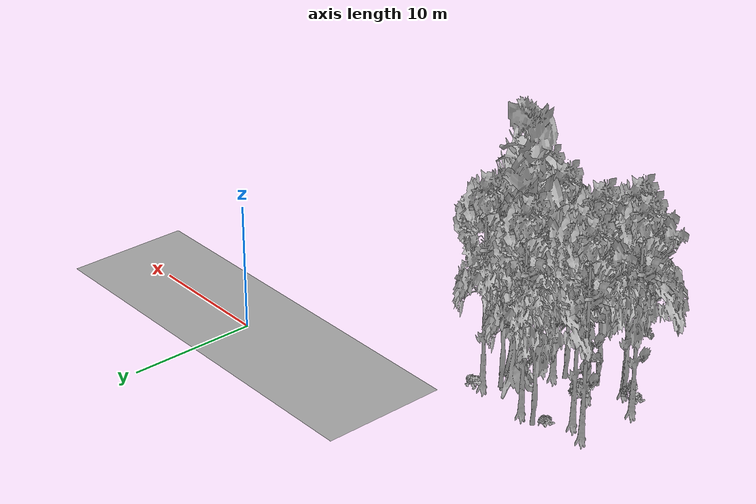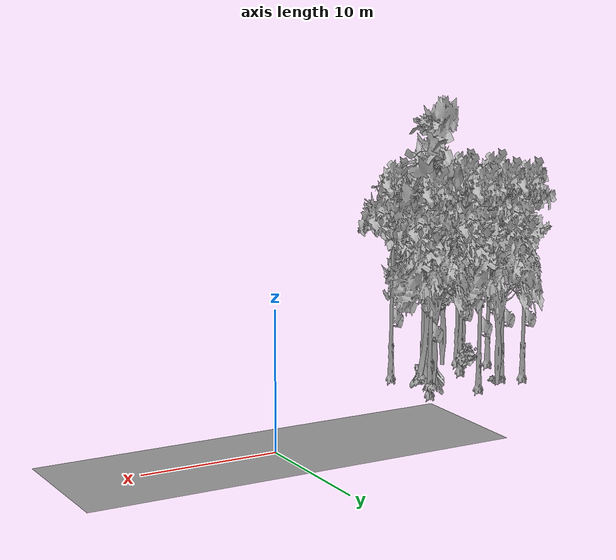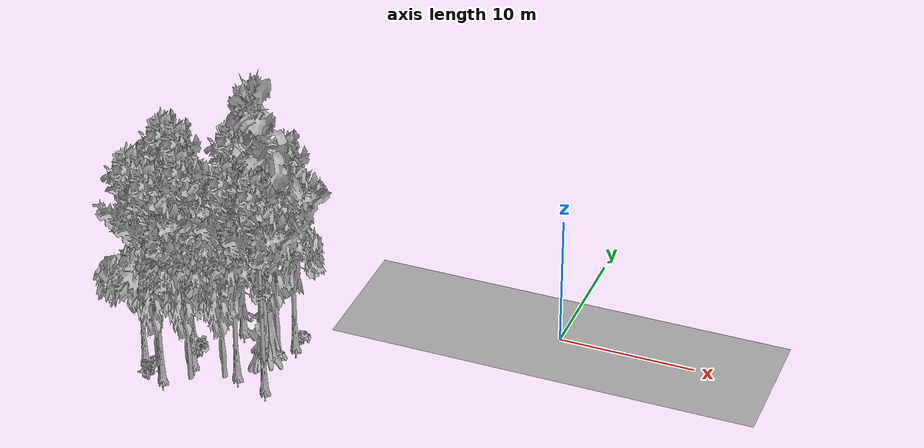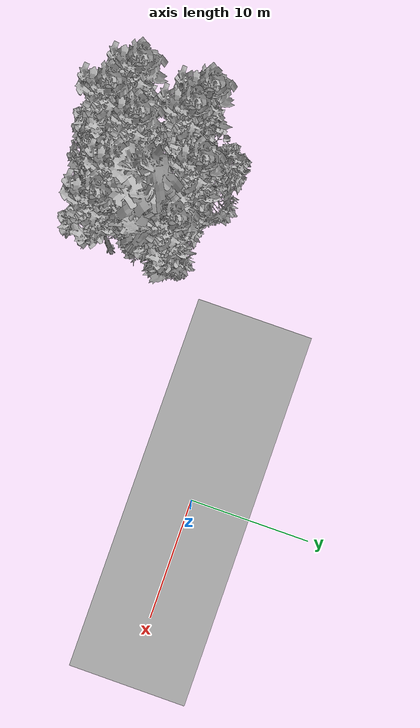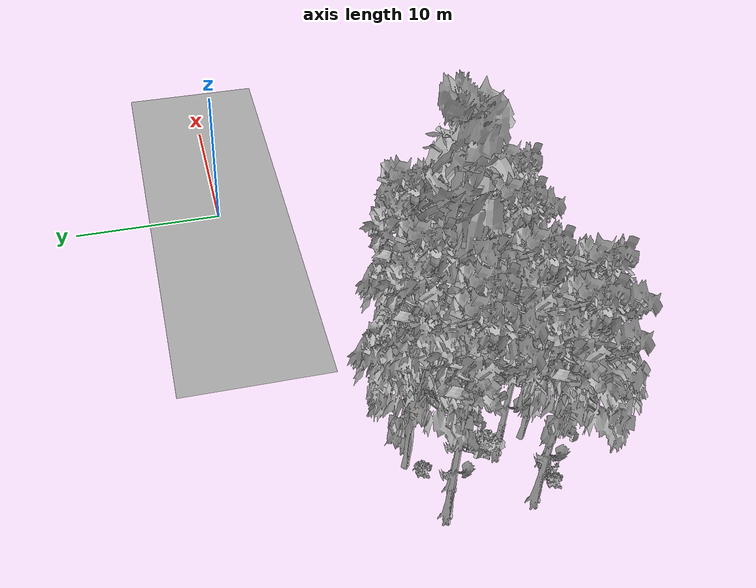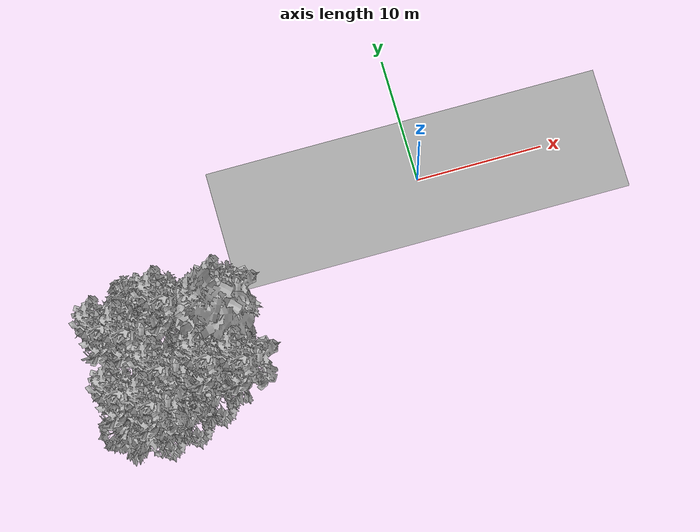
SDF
<sdf version="1.7">
 <world name="default">
  <model name="ground_plane">
   <static>1</static>
   <link name="link">
    <collision name="collision">
     <geometry><plane><normal>0 0 1</normal><size>100 100</size></plane></geometry>
     <surface><contact><ode><min_depth>0.01</min_depth><max_vel>0</max_vel></ode></contact></surface>
    </collision>
    <visual name="grass">
     <cast_shadows>0</cast_shadows>
     <geometry>
      <mesh>
       <scale>0.5814285714285714 0.18142857142857144 0.1</scale>
       <uri>file://grass_plane/meshes/grass_plane.dae</uri>
      </mesh>
     </geometry>
    </visual>
   </link>
  </model>
  <model name="Tree 41">
   <static>1</static>
   <pose>-24.451457299591986 -14.625689672736572 0 1.57079 -0 0</pose>
   <link name="link">
    <collision name="collision">
     <geometry><mesh><scale>3.5 5 3.5</scale><uri>model://tree_9/meshes/tree_9.obj</uri></mesh></geometry>
    </collision>
    <visual name="visual">
     <geometry><mesh><scale>3.5 5 3.5</scale><uri>model://tree_9/meshes/tree_9.obj</uri></mesh></geometry>
    </visual>
   </link>
  </model>
  <model name="Tree 54">
   <static>1</static>
   <pose>-17.361416371061484 -7.684900732536853 0 1.57079 -0 0</pose>
   <link name="link">
    <collision name="collision">
     <geometry><mesh><scale>3.5 5 3.5</scale><uri>model://tree_9/meshes/tree_9.obj</uri></mesh></geometry>
    </collision>
    <visual name="visual">
     <geometry><mesh><scale>3.5 5 3.5</scale><uri>model://tree_9/meshes/tree_9.obj</uri></mesh></geometry>
    </visual>
   </link>
  </model>
  <model name="Tree 76">
   <static>1</static>
   <pose>-23.223493184124933 -6.963229964629345 0 1.57079 -0 0</pose>
   <link name="link">
    <collision name="collision">
     <geometry><mesh><scale>3.5 5 3.5</scale><uri>model://tree_2/meshes/tree_2.obj</uri></mesh></geometry>
    </collision>
    <visual name="visual">
     <geometry><mesh><scale>3.5 5 3.5</scale><uri>model://tree_2/meshes/tree_2.obj</uri></mesh></geometry>
    </visual>
   </link>
  </model>
  <model name="Tree 84">
   <static>1</static>
   <pose>-19.708377108074192 -12.391503048258414 0 1.57079 -0 0</pose>
   <link name="link">
    <collision name="collision">
     <geometry><mesh><scale>3.5 5 3.5</scale><uri>model://tree_9/meshes/tree_9.obj</uri></mesh></geometry>
    </collision>
    <visual name="visual">
     <geometry><mesh><scale>3.5 5 3.5</scale><uri>model://tree_9/meshes/tree_9.obj</uri></mesh></geometry>
    </visual>
   </link>
  </model>
  <model name="Tree 92">
   <static>1</static>
   <pose>-23.19972205852703 -12.244818199688002 0 1.57079 -0 0</pose>
   <link name="link">
    <collision name="collision">
     <geometry><mesh><scale>3.5 5 3.5</scale><uri>model://tree_9/meshes/tree_9.obj</uri></mesh></geometry>
    </collision>
    <visual name="visual">
     <geometry><mesh><scale>3.5 5 3.5</scale><uri>model://tree_9/meshes/tree_9.obj</uri></mesh></geometry>
    </visual>
   </link>
  </model>
  <model name="Tree 130">
   <static>1</static>
   <pose>-17.231827865680646 -13.16360929230605 0 1.57079 -0 0</pose>
   <link name="link">
    <collision name="collision">
     <geometry><mesh><scale>3.5 5 3.5</scale><uri>model://tree_9/meshes/tree_9.obj</uri></mesh></geometry>
    </collision>
    <visual name="visual">
     <geometry><mesh><scale>3.5 5 3.5</scale><uri>model://tree_9/meshes/tree_9.obj</uri></mesh></geometry>
    </visual>
   </link>
  </model>
  <model name="Tree 165">
   <static>1</static>
   <pose>-26.506574094832384 -13.218556747706124 0 1.57079 -0 0</pose>
   <link name="link">
    <collision name="collision">
     <geometry><mesh><scale>3.5 5 3.5</scale><uri>model://tree_9/meshes/tree_9.obj</uri></mesh></geometry>
    </collision>
    <visual name="visual">
     <geometry><mesh><scale>3.5 5 3.5</scale><uri>model://tree_9/meshes/tree_9.obj</uri></mesh></geometry>
    </visual>
   </link>
  </model>
  <model name="Tree 191">
   <static>1</static>
   <pose>-21.616343585057898 -7.320516657027144 0 1.57079 -0 0</pose>
   <link name="link">
    <collision name="collision">
     <geometry><mesh><scale>3.5 5 3.5</scale><uri>model://tree_9/meshes/tree_9.obj</uri></mesh></geometry>
    </collision>
    <visual name="visual">
     <geometry><mesh><scale>3.5 5 3.5</scale><uri>model://tree_9/meshes/tree_9.obj</uri></mesh></geometry>
    </visual>
   </link>
  </model>
  <model name="Tree 249">
   <static>1</static>
   <pose>-24.92943936390442 -9.006984295651726 0 1.57079 -0 0</pose>
   <link name="link">
    <collision name="collision">
     <geometry><mesh><scale>3.5 5 3.5</scale><uri>model://tree_9/meshes/tree_9.obj</uri></mesh></geometry>
    </collision>
    <visual name="visual">
     <geometry><mesh><scale>3.5 5 3.5</scale><uri>model://tree_9/meshes/tree_9.obj</uri></mesh></geometry>
    </visual>
   </link>
  </model>
  <model name="Tree 256">
   <static>1</static>
   <pose>-26.455796040025835 -8.274158220925733 0 1.57079 -0 0</pose>
   <link name="link">
    <collision name="collision">
     <geometry><mesh><scale>3.5 5 3.5</scale><uri>model://tree_9/meshes/tree_9.obj</uri></mesh></geometry>
    </collision>
    <visual name="visual">
     <geometry><mesh><scale>3.5 5 3.5</scale><uri>model://tree_9/meshes/tree_9.obj</uri></mesh></geometry>
    </visual>
   </link>
  </model>
  <model name="Tree 265">
   <static>1</static>
   <pose>-22.678910040569225 -13.959701212560011 0 1.57079 -0 0</pose>
   <link name="link">
    <collision name="collision">
     <geometry><mesh><scale>3.5 5 3.5</scale><uri>model://tree_2/meshes/tree_2.obj</uri></mesh></geometry>
    </collision>
    <visual name="visual">
     <geometry><mesh><scale>3.5 5 3.5</scale><uri>model://tree_2/meshes/tree_2.obj</uri></mesh></geometry>
    </visual>
   </link>
  </model>
  <model name="Tree 322">
   <static>1</static>
   <pose>-20.534676329346517 -12.926606554095939 0 1.57079 -0 0</pose>
   <link name="link">
    <collision name="collision">
     <geometry><mesh><scale>3.5 5 3.5</scale><uri>model://tree_2/meshes/tree_2.obj</uri></mesh></geometry>
    </collision>
    <visual name="visual">
     <geometry><mesh><scale>3.5 5 3.5</scale><uri>model://tree_2/meshes/tree_2.obj</uri></mesh></geometry>
    </visual>
   </link>
  </model>
  <model name="Tree 338">
   <static>1</static>
   <pose>-18.38438823341412 -8.629597637266102 0 1.57079 -0 0</pose>
   <link name="link">
    <collision name="collision">
     <geometry><mesh><scale>3.5 5 3.5</scale><uri>model://tree_2/meshes/tree_2.obj</uri></mesh></geometry>
    </collision>
    <visual name="visual">
     <geometry><mesh><scale>3.5 5 3.5</scale><uri>model://tree_2/meshes/tree_2.obj</uri></mesh></geometry>
    </visual>
   </link>
  </model>
  <model name="Tree 414">
   <static>1</static>
   <pose>-18.646363440208845 -9.759201899910138 0 1.57079 -0 0</pose>
   <link name="link">
    <collision name="collision">
     <geometry><mesh><scale>3.5 5 3.5</scale><uri>model://tree_4/meshes/tree_4.obj</uri></mesh></geometry>
    </collision>
    <visual name="visual">
     <geometry><mesh><scale>3.5 5 3.5</scale><uri>model://tree_4/meshes/tree_4.obj</uri></mesh></geometry>
    </visual>
   </link>
  </model>
  <model name="Tree 419">
   <static>1</static>
   <pose>-24.833294571019 -14.374196639045422 0 1.57079 -0 0</pose>
   <link name="link">
    <collision name="collision">
     <geometry><mesh><scale>3.5 5 3.5</scale><uri>model://tree_2/meshes/tree_2.obj</uri></mesh></geometry>
    </collision>
    <visual name="visual">
     <geometry><mesh><scale>3.5 5 3.5</scale><uri>model://tree_2/meshes/tree_2.obj</uri></mesh></geometry>
    </visual>
   </link>
  </model>
  <model name="Bush 2">
   <static>1</static>
   <pose>-23.244231209742733 -11.733116401521947 0 1.57079 -0 0</pose>
   <link name="link">
    <collision name="collision">
     <geometry><mesh><scale>2 2 2</scale><uri>model://bush_1/meshes/bush_1.obj</uri></mesh></geometry>
     <surface><contact><collide_without_contact>false</collide_without_contact></contact></surface>
    </collision>
    <visual name="visual">
     <geometry><mesh><scale>2 2 2</scale><uri>model://bush_1/meshes/bush_1.obj</uri></mesh></geometry>
    </visual>
   </link>
  </model>
  <model name="Bush 20">
   <static>1</static>
   <pose>-25.39491807720114 -14.371304649762507 0 1.57079 -0 0</pose>
   <link name="link">
    <collision name="collision">
     <geometry><mesh><scale>2 2 2</scale><uri>model://bush_4/meshes/bush_4.obj</uri></mesh></geometry>
     <surface><contact><collide_without_contact>false</collide_without_contact></contact></surface>
    </collision>
    <visual name="visual">
     <geometry><mesh><scale>2 2 2</scale><uri>model://bush_4/meshes/bush_4.obj</uri></mesh></geometry>
    </visual>
   </link>
  </model>
  <model name="Bush 59">
   <static>1</static>
   <pose>-25.703655727849426 -14.678127062157317 0 1.57079 -0 0</pose>
   <link name="link">
    <collision name="collision">
     <geometry><mesh><scale>2 2 2</scale><uri>model://bush_2/meshes/bush_2.obj</uri></mesh></geometry>
     <surface><contact><collide_without_contact>false</collide_without_contact></contact></surface>
    </collision>
    <visual name="visual">
     <geometry><mesh><scale>2 2 2</scale><uri>model://bush_2/meshes/bush_2.obj</uri></mesh></geometry>
    </visual>
   </link>
  </model>
  <model name="Bush 118">
   <static>1</static>
   <pose>-17.788422191678112 -9.716156485115977 0 1.57079 -0 0</pose>
   <link name="link">
    <collision name="collision">
     <geometry><mesh><scale>2 2 2</scale><uri>model://bush_3/meshes/bush_3.obj</uri></mesh></geometry>
     <surface><contact><collide_without_contact>false</collide_without_contact></contact></surface>
    </collision>
    <visual name="visual">
     <geometry><mesh><scale>2 2 2</scale><uri>model://bush_3/meshes/bush_3.obj</uri></mesh></geometry>
    </visual>
   </link>
  </model>
  <model name="Bush 146">
   <static>1</static>
   <pose>-23.565883240054244 -7.864407291418675 0 1.57079 -0 0</pose>
   <link name="link">
    <collision name="collision">
     <geometry><mesh><scale>2 2 2</scale><uri>model://bush_2/meshes/bush_2.obj</uri></mesh></geometry>
     <surface><contact><collide_without_contact>false</collide_without_contact></contact></surface>
    </collision>
    <visual name="visual">
     <geometry><mesh><scale>2 2 2</scale><uri>model://bush_2/meshes/bush_2.obj</uri></mesh></geometry>
    </visual>
   </link>
  </model>
  <model name="Bush 167">
   <static>1</static>
   <pose>-18.464209156773737 -10.68460341081859 0 1.57079 -0 0</pose>
   <link name="link">
    <collision name="collision">
     <geometry><mesh><scale>2 2 2</scale><uri>model://bush_4/meshes/bush_4.obj</uri></mesh></geometry>
     <surface><contact><collide_without_contact>false</collide_without_contact></contact></surface>
    </collision>
    <visual name="visual">
     <geometry><mesh><scale>2 2 2</scale><uri>model://bush_4/meshes/bush_4.obj</uri></mesh></geometry>
    </visual>
   </link>
  </model>
  <model name="Bush 274">
   <static>1</static>
   <pose>-16.986805788425883 -7.063195276129688 0 1.57079 -0 0</pose>
   <link name="link">
    <collision name="collision">
     <geometry><mesh><scale>2 2 2</scale><uri>model://bush_3/meshes/bush_3.obj</uri></mesh></geometry>
     <surface><contact><collide_without_contact>false</collide_without_contact></contact></surface>
    </collision>
    <visual name="visual">
     <geometry><mesh><scale>2 2 2</scale><uri>model://bush_3/meshes/bush_3.obj</uri></mesh></geometry>
    </visual>
   </link>
  </model>
 </world>
</sdf>
